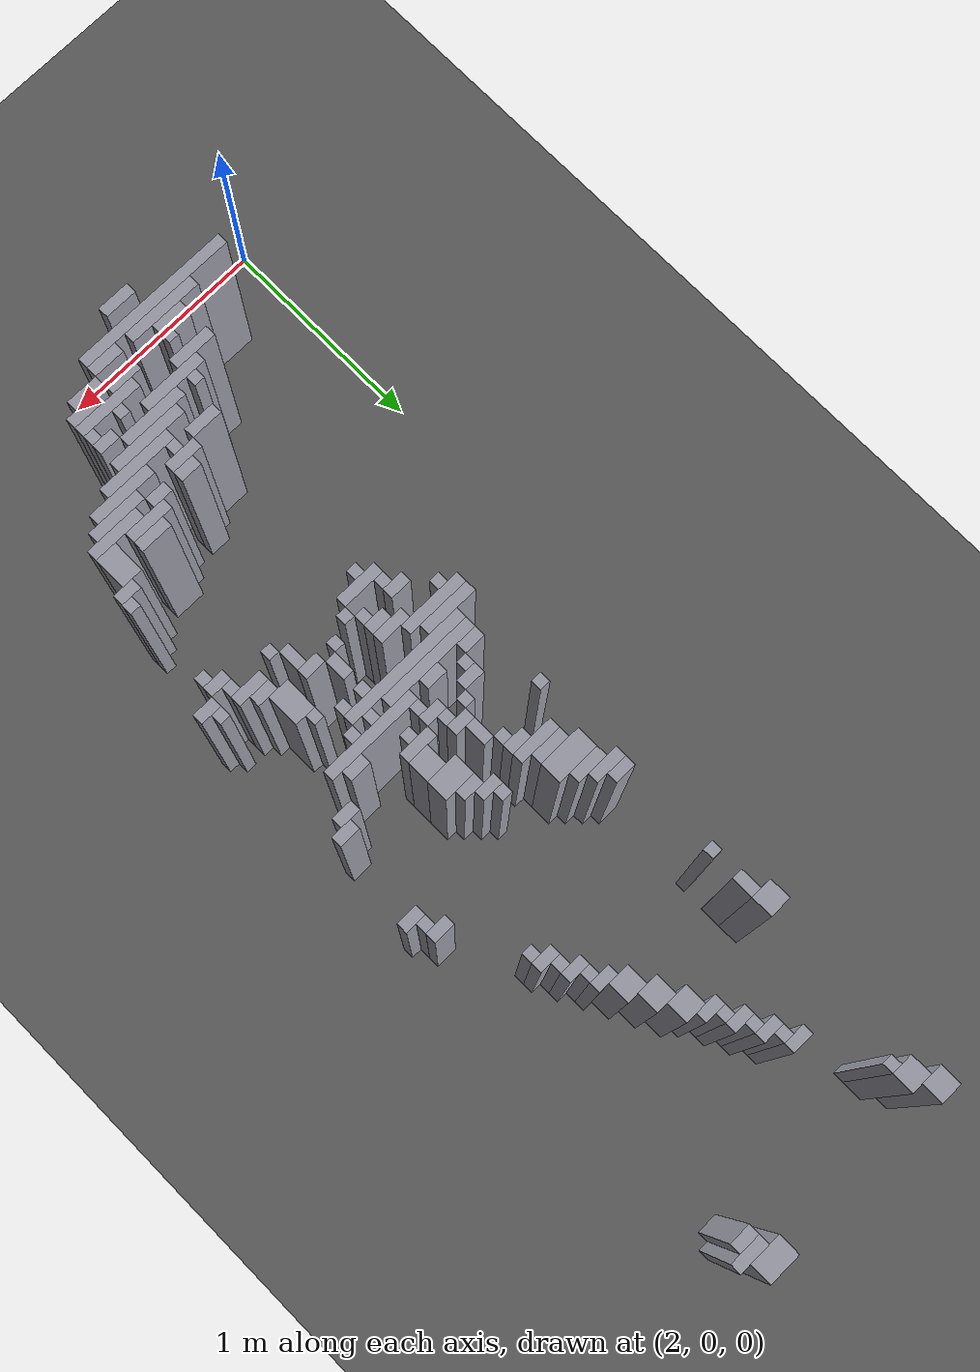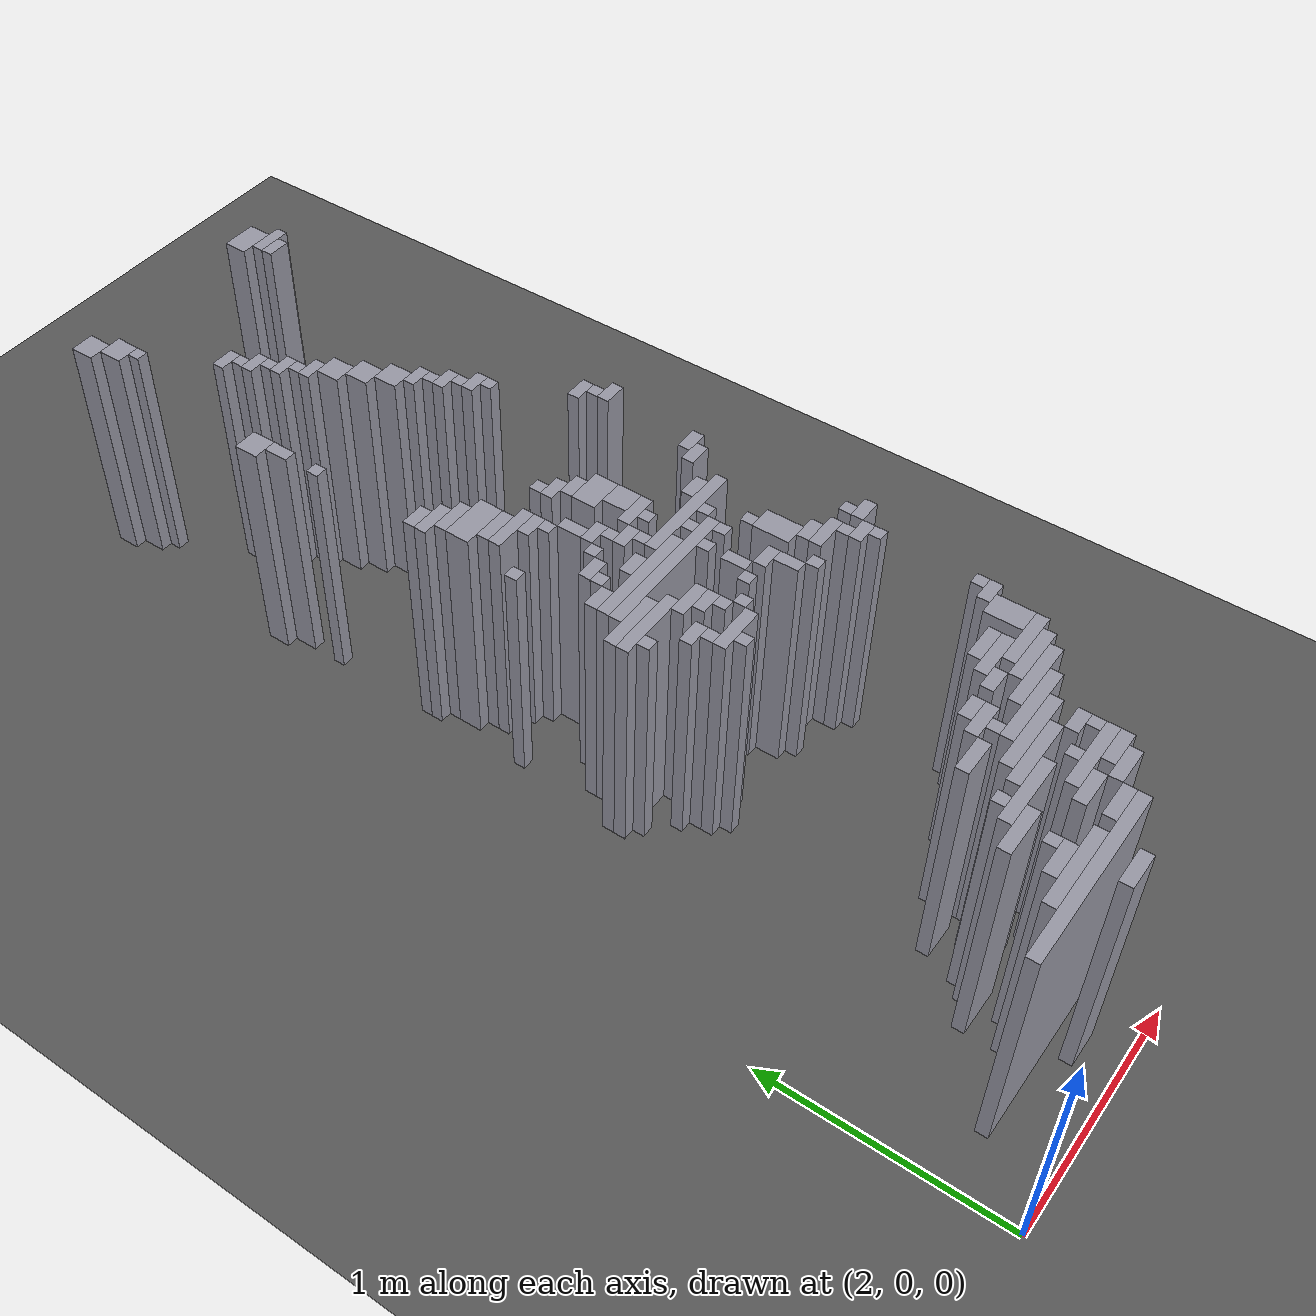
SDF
<sdf version="1.8">
 <world name="dimi">
  <model name="ground">
   <static>true</static>
   <link name="ground_link">
    <collision name="c"><geometry><plane><normal>0 0 1</normal><size>60 60</size></plane></geometry></collision>
    <visual name="v">
     <geometry><plane><normal>0 0 1</normal><size>60 60</size></plane></geometry>
     <material><ambient>0.3 0.3 0.3 1</ambient><diffuse>0.35 0.35 0.35 1</diffuse></material>
    </visual>
   </link>
  </model>
  <model name="walls">
   <static>true</static>
   <link name="wall_734">
    <pose>2.6330 4.4950 0.5000 0 0 0</pose>
    <collision name="c"><geometry><box><size>0.1000 0.1000 1.0000</size></box></geometry></collision>
    <visual name="v">
     <geometry><box><size>0.1000 0.1000 1.0000</size></box></geometry>
     <material><ambient>0.5 0.5 0.55 1</ambient><diffuse>0.6 0.6 0.65 1</diffuse></material>
    </visual>
   </link>
   <link name="wall_735">
    <pose>3.5080 4.4950 0.5000 0 0 0</pose>
    <collision name="c"><geometry><box><size>0.1500 0.1000 1.0000</size></box></geometry></collision>
    <visual name="v">
     <geometry><box><size>0.1500 0.1000 1.0000</size></box></geometry>
     <material><ambient>0.5 0.5 0.55 1</ambient><diffuse>0.6 0.6 0.65 1</diffuse></material>
    </visual>
   </link>
   <link name="wall_753">
    <pose>2.6830 4.3950 0.5000 0 0 0</pose>
    <collision name="c"><geometry><box><size>0.1000 0.1000 1.0000</size></box></geometry></collision>
    <visual name="v">
     <geometry><box><size>0.1000 0.1000 1.0000</size></box></geometry>
     <material><ambient>0.5 0.5 0.55 1</ambient><diffuse>0.6 0.6 0.65 1</diffuse></material>
    </visual>
   </link>
   <link name="wall_754">
    <pose>3.5580 4.4200 0.5000 0 0 0</pose>
    <collision name="c"><geometry><box><size>0.1500 0.0500 1.0000</size></box></geometry></collision>
    <visual name="v">
     <geometry><box><size>0.1500 0.0500 1.0000</size></box></geometry>
     <material><ambient>0.5 0.5 0.55 1</ambient><diffuse>0.6 0.6 0.65 1</diffuse></material>
    </visual>
   </link>
   <link name="wall_765">
    <pose>3.5330 4.3700 0.5000 0 0 0</pose>
    <collision name="c"><geometry><box><size>0.1000 0.0500 1.0000</size></box></geometry></collision>
    <visual name="v">
     <geometry><box><size>0.1000 0.0500 1.0000</size></box></geometry>
     <material><ambient>0.5 0.5 0.55 1</ambient><diffuse>0.6 0.6 0.65 1</diffuse></material>
    </visual>
   </link>
   <link name="wall_774">
    <pose>2.7080 4.3200 0.5000 0 0 0</pose>
    <collision name="c"><geometry><box><size>0.0500 0.0500 1.0000</size></box></geometry></collision>
    <visual name="v">
     <geometry><box><size>0.0500 0.0500 1.0000</size></box></geometry>
     <material><ambient>0.5 0.5 0.55 1</ambient><diffuse>0.6 0.6 0.65 1</diffuse></material>
    </visual>
   </link>
   <link name="wall_833">
    <pose>2.8830 4.0200 0.5000 0 0 0</pose>
    <collision name="c"><geometry><box><size>0.1000 0.0500 1.0000</size></box></geometry></collision>
    <visual name="v">
     <geometry><box><size>0.1000 0.0500 1.0000</size></box></geometry>
     <material><ambient>0.5 0.5 0.55 1</ambient><diffuse>0.6 0.6 0.65 1</diffuse></material>
    </visual>
   </link>
   <link name="wall_846">
    <pose>2.9080 3.9700 0.5000 0 0 0</pose>
    <collision name="c"><geometry><box><size>0.0500 0.0500 1.0000</size></box></geometry></collision>
    <visual name="v">
     <geometry><box><size>0.0500 0.0500 1.0000</size></box></geometry>
     <material><ambient>0.5 0.5 0.55 1</ambient><diffuse>0.6 0.6 0.65 1</diffuse></material>
    </visual>
   </link>
   <link name="wall_858">
    <pose>2.9330 3.9200 0.5000 0 0 0</pose>
    <collision name="c"><geometry><box><size>0.1000 0.0500 1.0000</size></box></geometry></collision>
    <visual name="v">
     <geometry><box><size>0.1000 0.0500 1.0000</size></box></geometry>
     <material><ambient>0.5 0.5 0.55 1</ambient><diffuse>0.6 0.6 0.65 1</diffuse></material>
    </visual>
   </link>
   <link name="wall_866">
    <pose>2.9580 3.8700 0.5000 0 0 0</pose>
    <collision name="c"><geometry><box><size>0.0500 0.0500 1.0000</size></box></geometry></collision>
    <visual name="v">
     <geometry><box><size>0.0500 0.0500 1.0000</size></box></geometry>
     <material><ambient>0.5 0.5 0.55 1</ambient><diffuse>0.6 0.6 0.65 1</diffuse></material>
    </visual>
   </link>
   <link name="wall_874">
    <pose>2.9830 3.8200 0.5000 0 0 0</pose>
    <collision name="c"><geometry><box><size>0.1000 0.0500 1.0000</size></box></geometry></collision>
    <visual name="v">
     <geometry><box><size>0.1000 0.0500 1.0000</size></box></geometry>
     <material><ambient>0.5 0.5 0.55 1</ambient><diffuse>0.6 0.6 0.65 1</diffuse></material>
    </visual>
   </link>
   <link name="wall_884">
    <pose>3.0080 3.7700 0.5000 0 0 0</pose>
    <collision name="c"><geometry><box><size>0.0500 0.0500 1.0000</size></box></geometry></collision>
    <visual name="v">
     <geometry><box><size>0.0500 0.0500 1.0000</size></box></geometry>
     <material><ambient>0.5 0.5 0.55 1</ambient><diffuse>0.6 0.6 0.65 1</diffuse></material>
    </visual>
   </link>
   <link name="wall_889">
    <pose>3.0330 3.7200 0.5000 0 0 0</pose>
    <collision name="c"><geometry><box><size>0.1000 0.0500 1.0000</size></box></geometry></collision>
    <visual name="v">
     <geometry><box><size>0.1000 0.0500 1.0000</size></box></geometry>
     <material><ambient>0.5 0.5 0.55 1</ambient><diffuse>0.6 0.6 0.65 1</diffuse></material>
    </visual>
   </link>
   <link name="wall_900">
    <pose>3.0830 3.6450 0.5000 0 0 0</pose>
    <collision name="c"><geometry><box><size>0.1000 0.1000 1.0000</size></box></geometry></collision>
    <visual name="v">
     <geometry><box><size>0.1000 0.1000 1.0000</size></box></geometry>
     <material><ambient>0.5 0.5 0.55 1</ambient><diffuse>0.6 0.6 0.65 1</diffuse></material>
    </visual>
   </link>
   <link name="wall_907">
    <pose>2.5830 3.5950 0.5000 0 0 0</pose>
    <collision name="c"><geometry><box><size>0.1000 0.1000 1.0000</size></box></geometry></collision>
    <visual name="v">
     <geometry><box><size>0.1000 0.1000 1.0000</size></box></geometry>
     <material><ambient>0.5 0.5 0.55 1</ambient><diffuse>0.6 0.6 0.65 1</diffuse></material>
    </visual>
   </link>
   <link name="wall_916">
    <pose>3.1330 3.5450 0.5000 0 0 0</pose>
    <collision name="c"><geometry><box><size>0.1000 0.1000 1.0000</size></box></geometry></collision>
    <visual name="v">
     <geometry><box><size>0.1000 0.1000 1.0000</size></box></geometry>
     <material><ambient>0.5 0.5 0.55 1</ambient><diffuse>0.6 0.6 0.65 1</diffuse></material>
    </visual>
   </link>
   <link name="wall_924">
    <pose>2.6080 3.4950 0.5000 0 0 0</pose>
    <collision name="c"><geometry><box><size>0.0500 0.1000 1.0000</size></box></geometry></collision>
    <visual name="v">
     <geometry><box><size>0.0500 0.1000 1.0000</size></box></geometry>
     <material><ambient>0.5 0.5 0.55 1</ambient><diffuse>0.6 0.6 0.65 1</diffuse></material>
    </visual>
   </link>
   <link name="wall_932">
    <pose>3.1830 3.4450 0.5000 0 0 0</pose>
    <collision name="c"><geometry><box><size>0.1000 0.1000 1.0000</size></box></geometry></collision>
    <visual name="v">
     <geometry><box><size>0.1000 0.1000 1.0000</size></box></geometry>
     <material><ambient>0.5 0.5 0.55 1</ambient><diffuse>0.6 0.6 0.65 1</diffuse></material>
    </visual>
   </link>
   <link name="wall_950">
    <pose>3.2330 3.3700 0.5000 0 0 0</pose>
    <collision name="c"><geometry><box><size>0.1000 0.0500 1.0000</size></box></geometry></collision>
    <visual name="v">
     <geometry><box><size>0.1000 0.0500 1.0000</size></box></geometry>
     <material><ambient>0.5 0.5 0.55 1</ambient><diffuse>0.6 0.6 0.65 1</diffuse></material>
    </visual>
   </link>
   <link name="wall_958">
    <pose>2.6080 3.3200 0.5000 0 0 0</pose>
    <collision name="c"><geometry><box><size>0.0500 0.0500 1.0000</size></box></geometry></collision>
    <visual name="v">
     <geometry><box><size>0.0500 0.0500 1.0000</size></box></geometry>
     <material><ambient>0.5 0.5 0.55 1</ambient><diffuse>0.6 0.6 0.65 1</diffuse></material>
    </visual>
   </link>
   <link name="wall_959">
    <pose>3.2580 3.3200 0.5000 0 0 0</pose>
    <collision name="c"><geometry><box><size>0.0500 0.0500 1.0000</size></box></geometry></collision>
    <visual name="v">
     <geometry><box><size>0.0500 0.0500 1.0000</size></box></geometry>
     <material><ambient>0.5 0.5 0.55 1</ambient><diffuse>0.6 0.6 0.65 1</diffuse></material>
    </visual>
   </link>
   <link name="wall_966">
    <pose>3.2830 3.2700 0.5000 0 0 0</pose>
    <collision name="c"><geometry><box><size>0.1000 0.0500 1.0000</size></box></geometry></collision>
    <visual name="v">
     <geometry><box><size>0.1000 0.0500 1.0000</size></box></geometry>
     <material><ambient>0.5 0.5 0.55 1</ambient><diffuse>0.6 0.6 0.65 1</diffuse></material>
    </visual>
   </link>
   <link name="wall_974">
    <pose>3.3080 3.2200 0.5000 0 0 0</pose>
    <collision name="c"><geometry><box><size>0.0500 0.0500 1.0000</size></box></geometry></collision>
    <visual name="v">
     <geometry><box><size>0.0500 0.0500 1.0000</size></box></geometry>
     <material><ambient>0.5 0.5 0.55 1</ambient><diffuse>0.6 0.6 0.65 1</diffuse></material>
    </visual>
   </link>
   <link name="wall_981">
    <pose>3.3330 3.1700 0.5000 0 0 0</pose>
    <collision name="c"><geometry><box><size>0.1000 0.0500 1.0000</size></box></geometry></collision>
    <visual name="v">
     <geometry><box><size>0.1000 0.0500 1.0000</size></box></geometry>
     <material><ambient>0.5 0.5 0.55 1</ambient><diffuse>0.6 0.6 0.65 1</diffuse></material>
    </visual>
   </link>
   <link name="wall_988">
    <pose>3.3580 3.1200 0.5000 0 0 0</pose>
    <collision name="c"><geometry><box><size>0.0500 0.0500 1.0000</size></box></geometry></collision>
    <visual name="v">
     <geometry><box><size>0.0500 0.0500 1.0000</size></box></geometry>
     <material><ambient>0.5 0.5 0.55 1</ambient><diffuse>0.6 0.6 0.65 1</diffuse></material>
    </visual>
   </link>
   <link name="wall_1008">
    <pose>2.6330 2.8700 0.5000 0 0 0</pose>
    <collision name="c"><geometry><box><size>0.1000 0.0500 1.0000</size></box></geometry></collision>
    <visual name="v">
     <geometry><box><size>0.1000 0.0500 1.0000</size></box></geometry>
     <material><ambient>0.5 0.5 0.55 1</ambient><diffuse>0.6 0.6 0.65 1</diffuse></material>
    </visual>
   </link>
   <link name="wall_1011">
    <pose>2.6580 2.8200 0.5000 0 0 0</pose>
    <collision name="c"><geometry><box><size>0.1500 0.0500 1.0000</size></box></geometry></collision>
    <visual name="v">
     <geometry><box><size>0.1500 0.0500 1.0000</size></box></geometry>
     <material><ambient>0.5 0.5 0.55 1</ambient><diffuse>0.6 0.6 0.65 1</diffuse></material>
    </visual>
   </link>
   <link name="wall_1012">
    <pose>3.5330 2.8200 0.5000 0 0 0</pose>
    <collision name="c"><geometry><box><size>0.1000 0.0500 1.0000</size></box></geometry></collision>
    <visual name="v">
     <geometry><box><size>0.1000 0.0500 1.0000</size></box></geometry>
     <material><ambient>0.5 0.5 0.55 1</ambient><diffuse>0.6 0.6 0.65 1</diffuse></material>
    </visual>
   </link>
   <link name="wall_1015">
    <pose>2.7080 2.7700 0.5000 0 0 0</pose>
    <collision name="c"><geometry><box><size>0.1500 0.0500 1.0000</size></box></geometry></collision>
    <visual name="v">
     <geometry><box><size>0.1500 0.0500 1.0000</size></box></geometry>
     <material><ambient>0.5 0.5 0.55 1</ambient><diffuse>0.6 0.6 0.65 1</diffuse></material>
    </visual>
   </link>
   <link name="wall_1016">
    <pose>3.5580 2.7700 0.5000 0 0 0</pose>
    <collision name="c"><geometry><box><size>0.0500 0.0500 1.0000</size></box></geometry></collision>
    <visual name="v">
     <geometry><box><size>0.0500 0.0500 1.0000</size></box></geometry>
     <material><ambient>0.5 0.5 0.55 1</ambient><diffuse>0.6 0.6 0.65 1</diffuse></material>
    </visual>
   </link>
   <link name="wall_1021">
    <pose>2.7330 2.6950 0.5000 0 0 0</pose>
    <collision name="c"><geometry><box><size>0.2000 0.1000 1.0000</size></box></geometry></collision>
    <visual name="v">
     <geometry><box><size>0.2000 0.1000 1.0000</size></box></geometry>
     <material><ambient>0.5 0.5 0.55 1</ambient><diffuse>0.6 0.6 0.65 1</diffuse></material>
    </visual>
   </link>
   <link name="wall_1022">
    <pose>3.5830 2.7200 0.5000 0 0 0</pose>
    <collision name="c"><geometry><box><size>0.1000 0.0500 1.0000</size></box></geometry></collision>
    <visual name="v">
     <geometry><box><size>0.1000 0.0500 1.0000</size></box></geometry>
     <material><ambient>0.5 0.5 0.55 1</ambient><diffuse>0.6 0.6 0.65 1</diffuse></material>
    </visual>
   </link>
   <link name="wall_1032">
    <pose>2.7580 2.6200 0.5000 0 0 0</pose>
    <collision name="c"><geometry><box><size>0.1500 0.0500 1.0000</size></box></geometry></collision>
    <visual name="v">
     <geometry><box><size>0.1500 0.0500 1.0000</size></box></geometry>
     <material><ambient>0.5 0.5 0.55 1</ambient><diffuse>0.6 0.6 0.65 1</diffuse></material>
    </visual>
   </link>
   <link name="wall_1033">
    <pose>3.0080 2.6200 0.5000 0 0 0</pose>
    <collision name="c"><geometry><box><size>0.0500 0.0500 1.0000</size></box></geometry></collision>
    <visual name="v">
     <geometry><box><size>0.0500 0.0500 1.0000</size></box></geometry>
     <material><ambient>0.5 0.5 0.55 1</ambient><diffuse>0.6 0.6 0.65 1</diffuse></material>
    </visual>
   </link>
   <link name="wall_1039">
    <pose>2.7830 2.5700 0.5000 0 0 0</pose>
    <collision name="c"><geometry><box><size>0.2000 0.0500 1.0000</size></box></geometry></collision>
    <visual name="v">
     <geometry><box><size>0.2000 0.0500 1.0000</size></box></geometry>
     <material><ambient>0.5 0.5 0.55 1</ambient><diffuse>0.6 0.6 0.65 1</diffuse></material>
    </visual>
   </link>
   <link name="wall_1040">
    <pose>3.0330 2.5700 0.5000 0 0 0</pose>
    <collision name="c"><geometry><box><size>0.1000 0.0500 1.0000</size></box></geometry></collision>
    <visual name="v">
     <geometry><box><size>0.1000 0.0500 1.0000</size></box></geometry>
     <material><ambient>0.5 0.5 0.55 1</ambient><diffuse>0.6 0.6 0.65 1</diffuse></material>
    </visual>
   </link>
   <link name="wall_1047">
    <pose>2.8330 2.5200 0.5000 0 0 0</pose>
    <collision name="c"><geometry><box><size>0.1000 0.0500 1.0000</size></box></geometry></collision>
    <visual name="v">
     <geometry><box><size>0.1000 0.0500 1.0000</size></box></geometry>
     <material><ambient>0.5 0.5 0.55 1</ambient><diffuse>0.6 0.6 0.65 1</diffuse></material>
    </visual>
   </link>
   <link name="wall_1048">
    <pose>3.0830 2.5200 0.5000 0 0 0</pose>
    <collision name="c"><geometry><box><size>0.1000 0.0500 1.0000</size></box></geometry></collision>
    <visual name="v">
     <geometry><box><size>0.1000 0.0500 1.0000</size></box></geometry>
     <material><ambient>0.5 0.5 0.55 1</ambient><diffuse>0.6 0.6 0.65 1</diffuse></material>
    </visual>
   </link>
   <link name="wall_1054">
    <pose>2.8580 2.4700 0.5000 0 0 0</pose>
    <collision name="c"><geometry><box><size>0.0500 0.0500 1.0000</size></box></geometry></collision>
    <visual name="v">
     <geometry><box><size>0.0500 0.0500 1.0000</size></box></geometry>
     <material><ambient>0.5 0.5 0.55 1</ambient><diffuse>0.6 0.6 0.65 1</diffuse></material>
    </visual>
   </link>
   <link name="wall_1055">
    <pose>3.1080 2.4450 0.5000 0 0 0</pose>
    <collision name="c"><geometry><box><size>0.1500 0.1000 1.0000</size></box></geometry></collision>
    <visual name="v">
     <geometry><box><size>0.1500 0.1000 1.0000</size></box></geometry>
     <material><ambient>0.5 0.5 0.55 1</ambient><diffuse>0.6 0.6 0.65 1</diffuse></material>
    </visual>
   </link>
   <link name="wall_1062">
    <pose>2.6080 2.4200 0.5000 0 0 0</pose>
    <collision name="c"><geometry><box><size>0.0500 0.0500 1.0000</size></box></geometry></collision>
    <visual name="v">
     <geometry><box><size>0.0500 0.0500 1.0000</size></box></geometry>
     <material><ambient>0.5 0.5 0.55 1</ambient><diffuse>0.6 0.6 0.65 1</diffuse></material>
    </visual>
   </link>
   <link name="wall_1063">
    <pose>2.9080 2.3950 0.5000 0 0 0</pose>
    <collision name="c"><geometry><box><size>0.0500 0.1000 1.0000</size></box></geometry></collision>
    <visual name="v">
     <geometry><box><size>0.0500 0.1000 1.0000</size></box></geometry>
     <material><ambient>0.5 0.5 0.55 1</ambient><diffuse>0.6 0.6 0.65 1</diffuse></material>
    </visual>
   </link>
   <link name="wall_1067">
    <pose>3.1330 2.3450 0.5000 0 0 0</pose>
    <collision name="c"><geometry><box><size>0.1000 0.1000 1.0000</size></box></geometry></collision>
    <visual name="v">
     <geometry><box><size>0.1000 0.1000 1.0000</size></box></geometry>
     <material><ambient>0.5 0.5 0.55 1</ambient><diffuse>0.6 0.6 0.65 1</diffuse></material>
    </visual>
   </link>
   <link name="wall_1071">
    <pose>2.9330 2.3200 0.5000 0 0 0</pose>
    <collision name="c"><geometry><box><size>0.1000 0.0500 1.0000</size></box></geometry></collision>
    <visual name="v">
     <geometry><box><size>0.1000 0.0500 1.0000</size></box></geometry>
     <material><ambient>0.5 0.5 0.55 1</ambient><diffuse>0.6 0.6 0.65 1</diffuse></material>
    </visual>
   </link>
   <link name="wall_1072">
    <pose>3.5330 2.3200 0.5000 0 0 0</pose>
    <collision name="c"><geometry><box><size>0.1000 0.0500 1.0000</size></box></geometry></collision>
    <visual name="v">
     <geometry><box><size>0.1000 0.0500 1.0000</size></box></geometry>
     <material><ambient>0.5 0.5 0.55 1</ambient><diffuse>0.6 0.6 0.65 1</diffuse></material>
    </visual>
   </link>
   <link name="wall_1075">
    <pose>2.8580 2.2700 0.5000 0 0 0</pose>
    <collision name="c"><geometry><box><size>0.0500 0.0500 1.0000</size></box></geometry></collision>
    <visual name="v">
     <geometry><box><size>0.0500 0.0500 1.0000</size></box></geometry>
     <material><ambient>0.5 0.5 0.55 1</ambient><diffuse>0.6 0.6 0.65 1</diffuse></material>
    </visual>
   </link>
   <link name="wall_1076">
    <pose>2.9580 2.2700 0.5000 0 0 0</pose>
    <collision name="c"><geometry><box><size>0.0500 0.0500 1.0000</size></box></geometry></collision>
    <visual name="v">
     <geometry><box><size>0.0500 0.0500 1.0000</size></box></geometry>
     <material><ambient>0.5 0.5 0.55 1</ambient><diffuse>0.6 0.6 0.65 1</diffuse></material>
    </visual>
   </link>
   <link name="wall_1077">
    <pose>3.1080 2.2700 0.5000 0 0 0</pose>
    <collision name="c"><geometry><box><size>0.1500 0.0500 1.0000</size></box></geometry></collision>
    <visual name="v">
     <geometry><box><size>0.1500 0.0500 1.0000</size></box></geometry>
     <material><ambient>0.5 0.5 0.55 1</ambient><diffuse>0.6 0.6 0.65 1</diffuse></material>
    </visual>
   </link>
   <link name="wall_1078">
    <pose>3.4830 2.2700 0.5000 0 0 0</pose>
    <collision name="c"><geometry><box><size>0.1000 0.0500 1.0000</size></box></geometry></collision>
    <visual name="v">
     <geometry><box><size>0.1000 0.0500 1.0000</size></box></geometry>
     <material><ambient>0.5 0.5 0.55 1</ambient><diffuse>0.6 0.6 0.65 1</diffuse></material>
    </visual>
   </link>
   <link name="wall_1081">
    <pose>2.7830 2.2200 0.5000 0 0 0</pose>
    <collision name="c"><geometry><box><size>0.1000 0.0500 1.0000</size></box></geometry></collision>
    <visual name="v">
     <geometry><box><size>0.1000 0.0500 1.0000</size></box></geometry>
     <material><ambient>0.5 0.5 0.55 1</ambient><diffuse>0.6 0.6 0.65 1</diffuse></material>
    </visual>
   </link>
   <link name="wall_1082">
    <pose>2.9830 2.2200 0.5000 0 0 0</pose>
    <collision name="c"><geometry><box><size>0.1000 0.0500 1.0000</size></box></geometry></collision>
    <visual name="v">
     <geometry><box><size>0.1000 0.0500 1.0000</size></box></geometry>
     <material><ambient>0.5 0.5 0.55 1</ambient><diffuse>0.6 0.6 0.65 1</diffuse></material>
    </visual>
   </link>
   <link name="wall_1083">
    <pose>3.1080 2.2200 0.5000 0 0 0</pose>
    <collision name="c"><geometry><box><size>0.0500 0.0500 1.0000</size></box></geometry></collision>
    <visual name="v">
     <geometry><box><size>0.0500 0.0500 1.0000</size></box></geometry>
     <material><ambient>0.5 0.5 0.55 1</ambient><diffuse>0.6 0.6 0.65 1</diffuse></material>
    </visual>
   </link>
   <link name="wall_1088">
    <pose>2.7580 2.1700 0.5000 0 0 0</pose>
    <collision name="c"><geometry><box><size>0.0500 0.0500 1.0000</size></box></geometry></collision>
    <visual name="v">
     <geometry><box><size>0.0500 0.0500 1.0000</size></box></geometry>
     <material><ambient>0.5 0.5 0.55 1</ambient><diffuse>0.6 0.6 0.65 1</diffuse></material>
    </visual>
   </link>
   <link name="wall_1089">
    <pose>3.0080 2.1700 0.5000 0 0 0</pose>
    <collision name="c"><geometry><box><size>0.0500 0.0500 1.0000</size></box></geometry></collision>
    <visual name="v">
     <geometry><box><size>0.0500 0.0500 1.0000</size></box></geometry>
     <material><ambient>0.5 0.5 0.55 1</ambient><diffuse>0.6 0.6 0.65 1</diffuse></material>
    </visual>
   </link>
   <link name="wall_1090">
    <pose>3.3330 2.1700 0.5000 0 0 0</pose>
    <collision name="c"><geometry><box><size>0.1000 0.0500 1.0000</size></box></geometry></collision>
    <visual name="v">
     <geometry><box><size>0.1000 0.0500 1.0000</size></box></geometry>
     <material><ambient>0.5 0.5 0.55 1</ambient><diffuse>0.6 0.6 0.65 1</diffuse></material>
    </visual>
   </link>
   <link name="wall_1094">
    <pose>2.6830 2.1200 0.5000 0 0 0</pose>
    <collision name="c"><geometry><box><size>0.1000 0.0500 1.0000</size></box></geometry></collision>
    <visual name="v">
     <geometry><box><size>0.1000 0.0500 1.0000</size></box></geometry>
     <material><ambient>0.5 0.5 0.55 1</ambient><diffuse>0.6 0.6 0.65 1</diffuse></material>
    </visual>
   </link>
   <link name="wall_1095">
    <pose>2.8830 2.1200 0.5000 0 0 0</pose>
    <collision name="c"><geometry><box><size>0.1000 0.0500 1.0000</size></box></geometry></collision>
    <visual name="v">
     <geometry><box><size>0.1000 0.0500 1.0000</size></box></geometry>
     <material><ambient>0.5 0.5 0.55 1</ambient><diffuse>0.6 0.6 0.65 1</diffuse></material>
    </visual>
   </link>
   <link name="wall_1096">
    <pose>3.2080 2.1200 0.5000 0 0 0</pose>
    <collision name="c"><geometry><box><size>0.4500 0.0500 1.0000</size></box></geometry></collision>
    <visual name="v">
     <geometry><box><size>0.4500 0.0500 1.0000</size></box></geometry>
     <material><ambient>0.5 0.5 0.55 1</ambient><diffuse>0.6 0.6 0.65 1</diffuse></material>
    </visual>
   </link>
   <link name="wall_1099">
    <pose>2.8580 2.0700 0.5000 0 0 0</pose>
    <collision name="c"><geometry><box><size>0.4500 0.0500 1.0000</size></box></geometry></collision>
    <visual name="v">
     <geometry><box><size>0.4500 0.0500 1.0000</size></box></geometry>
     <material><ambient>0.5 0.5 0.55 1</ambient><diffuse>0.6 0.6 0.65 1</diffuse></material>
    </visual>
   </link>
   <link name="wall_1100">
    <pose>3.1580 2.0700 0.5000 0 0 0</pose>
    <collision name="c"><geometry><box><size>0.0500 0.0500 1.0000</size></box></geometry></collision>
    <visual name="v">
     <geometry><box><size>0.0500 0.0500 1.0000</size></box></geometry>
     <material><ambient>0.5 0.5 0.55 1</ambient><diffuse>0.6 0.6 0.65 1</diffuse></material>
    </visual>
   </link>
   <link name="wall_1101">
    <pose>3.2580 2.0700 0.5000 0 0 0</pose>
    <collision name="c"><geometry><box><size>0.0500 0.0500 1.0000</size></box></geometry></collision>
    <visual name="v">
     <geometry><box><size>0.0500 0.0500 1.0000</size></box></geometry>
     <material><ambient>0.5 0.5 0.55 1</ambient><diffuse>0.6 0.6 0.65 1</diffuse></material>
    </visual>
   </link>
   <link name="wall_1103">
    <pose>2.9330 2.0200 0.5000 0 0 0</pose>
    <collision name="c"><geometry><box><size>0.6000 0.0500 1.0000</size></box></geometry></collision>
    <visual name="v">
     <geometry><box><size>0.6000 0.0500 1.0000</size></box></geometry>
     <material><ambient>0.5 0.5 0.55 1</ambient><diffuse>0.6 0.6 0.65 1</diffuse></material>
    </visual>
   </link>
   <link name="wall_1106">
    <pose>2.6580 1.9700 0.5000 0 0 0</pose>
    <collision name="c"><geometry><box><size>0.2500 0.0500 1.0000</size></box></geometry></collision>
    <visual name="v">
     <geometry><box><size>0.2500 0.0500 1.0000</size></box></geometry>
     <material><ambient>0.5 0.5 0.55 1</ambient><diffuse>0.6 0.6 0.65 1</diffuse></material>
    </visual>
   </link>
   <link name="wall_1107">
    <pose>3.1080 1.9700 0.5000 0 0 0</pose>
    <collision name="c"><geometry><box><size>0.0500 0.0500 1.0000</size></box></geometry></collision>
    <visual name="v">
     <geometry><box><size>0.0500 0.0500 1.0000</size></box></geometry>
     <material><ambient>0.5 0.5 0.55 1</ambient><diffuse>0.6 0.6 0.65 1</diffuse></material>
    </visual>
   </link>
   <link name="wall_1108">
    <pose>3.2080 1.9700 0.5000 0 0 0</pose>
    <collision name="c"><geometry><box><size>0.0500 0.0500 1.0000</size></box></geometry></collision>
    <visual name="v">
     <geometry><box><size>0.0500 0.0500 1.0000</size></box></geometry>
     <material><ambient>0.5 0.5 0.55 1</ambient><diffuse>0.6 0.6 0.65 1</diffuse></material>
    </visual>
   </link>
   <link name="wall_1111">
    <pose>2.6830 1.9200 0.5000 0 0 0</pose>
    <collision name="c"><geometry><box><size>0.3000 0.0500 1.0000</size></box></geometry></collision>
    <visual name="v">
     <geometry><box><size>0.3000 0.0500 1.0000</size></box></geometry>
     <material><ambient>0.5 0.5 0.55 1</ambient><diffuse>0.6 0.6 0.65 1</diffuse></material>
    </visual>
   </link>
   <link name="wall_1112">
    <pose>3.3080 1.9200 0.5000 0 0 0</pose>
    <collision name="c"><geometry><box><size>0.0500 0.0500 1.0000</size></box></geometry></collision>
    <visual name="v">
     <geometry><box><size>0.0500 0.0500 1.0000</size></box></geometry>
     <material><ambient>0.5 0.5 0.55 1</ambient><diffuse>0.6 0.6 0.65 1</diffuse></material>
    </visual>
   </link>
   <link name="wall_1115">
    <pose>2.6080 1.8700 0.5000 0 0 0</pose>
    <collision name="c"><geometry><box><size>0.0500 0.0500 1.0000</size></box></geometry></collision>
    <visual name="v">
     <geometry><box><size>0.0500 0.0500 1.0000</size></box></geometry>
     <material><ambient>0.5 0.5 0.55 1</ambient><diffuse>0.6 0.6 0.65 1</diffuse></material>
    </visual>
   </link>
   <link name="wall_1116">
    <pose>2.8580 1.8700 0.5000 0 0 0</pose>
    <collision name="c"><geometry><box><size>0.1500 0.0500 1.0000</size></box></geometry></collision>
    <visual name="v">
     <geometry><box><size>0.1500 0.0500 1.0000</size></box></geometry>
     <material><ambient>0.5 0.5 0.55 1</ambient><diffuse>0.6 0.6 0.65 1</diffuse></material>
    </visual>
   </link>
   <link name="wall_1117">
    <pose>3.1080 1.8450 0.5000 0 0 0</pose>
    <collision name="c"><geometry><box><size>0.0500 0.1000 1.0000</size></box></geometry></collision>
    <visual name="v">
     <geometry><box><size>0.0500 0.1000 1.0000</size></box></geometry>
     <material><ambient>0.5 0.5 0.55 1</ambient><diffuse>0.6 0.6 0.65 1</diffuse></material>
    </visual>
   </link>
   <link name="wall_1118">
    <pose>3.3330 1.8200 0.5000 0 0 0</pose>
    <collision name="c"><geometry><box><size>0.1000 0.1500 1.0000</size></box></geometry></collision>
    <visual name="v">
     <geometry><box><size>0.1000 0.1500 1.0000</size></box></geometry>
     <material><ambient>0.5 0.5 0.55 1</ambient><diffuse>0.6 0.6 0.65 1</diffuse></material>
    </visual>
   </link>
   <link name="wall_1122">
    <pose>2.8830 1.8200 0.5000 0 0 0</pose>
    <collision name="c"><geometry><box><size>0.1000 0.0500 1.0000</size></box></geometry></collision>
    <visual name="v">
     <geometry><box><size>0.1000 0.0500 1.0000</size></box></geometry>
     <material><ambient>0.5 0.5 0.55 1</ambient><diffuse>0.6 0.6 0.65 1</diffuse></material>
    </visual>
   </link>
   <link name="wall_1123">
    <pose>2.7330 1.7700 0.5000 0 0 0</pose>
    <collision name="c"><geometry><box><size>0.1000 0.0500 1.0000</size></box></geometry></collision>
    <visual name="v">
     <geometry><box><size>0.1000 0.0500 1.0000</size></box></geometry>
     <material><ambient>0.5 0.5 0.55 1</ambient><diffuse>0.6 0.6 0.65 1</diffuse></material>
    </visual>
   </link>
   <link name="wall_1124">
    <pose>2.9080 1.7700 0.5000 0 0 0</pose>
    <collision name="c"><geometry><box><size>0.0500 0.0500 1.0000</size></box></geometry></collision>
    <visual name="v">
     <geometry><box><size>0.0500 0.0500 1.0000</size></box></geometry>
     <material><ambient>0.5 0.5 0.55 1</ambient><diffuse>0.6 0.6 0.65 1</diffuse></material>
    </visual>
   </link>
   <link name="wall_1125">
    <pose>3.0580 1.7700 0.5000 0 0 0</pose>
    <collision name="c"><geometry><box><size>0.0500 0.0500 1.0000</size></box></geometry></collision>
    <visual name="v">
     <geometry><box><size>0.0500 0.0500 1.0000</size></box></geometry>
     <material><ambient>0.5 0.5 0.55 1</ambient><diffuse>0.6 0.6 0.65 1</diffuse></material>
    </visual>
   </link>
   <link name="wall_1126">
    <pose>3.1830 1.7700 0.5000 0 0 0</pose>
    <collision name="c"><geometry><box><size>0.1000 0.0500 1.0000</size></box></geometry></collision>
    <visual name="v">
     <geometry><box><size>0.1000 0.0500 1.0000</size></box></geometry>
     <material><ambient>0.5 0.5 0.55 1</ambient><diffuse>0.6 0.6 0.65 1</diffuse></material>
    </visual>
   </link>
   <link name="wall_1129">
    <pose>2.7580 1.7200 0.5000 0 0 0</pose>
    <collision name="c"><geometry><box><size>0.0500 0.0500 1.0000</size></box></geometry></collision>
    <visual name="v">
     <geometry><box><size>0.0500 0.0500 1.0000</size></box></geometry>
     <material><ambient>0.5 0.5 0.55 1</ambient><diffuse>0.6 0.6 0.65 1</diffuse></material>
    </visual>
   </link>
   <link name="wall_1130">
    <pose>2.9580 1.7200 0.5000 0 0 0</pose>
    <collision name="c"><geometry><box><size>0.0500 0.0500 1.0000</size></box></geometry></collision>
    <visual name="v">
     <geometry><box><size>0.0500 0.0500 1.0000</size></box></geometry>
     <material><ambient>0.5 0.5 0.55 1</ambient><diffuse>0.6 0.6 0.65 1</diffuse></material>
    </visual>
   </link>
   <link name="wall_1131">
    <pose>3.2080 1.6950 0.5000 0 0 0</pose>
    <collision name="c"><geometry><box><size>0.0500 0.1000 1.0000</size></box></geometry></collision>
    <visual name="v">
     <geometry><box><size>0.0500 0.1000 1.0000</size></box></geometry>
     <material><ambient>0.5 0.5 0.55 1</ambient><diffuse>0.6 0.6 0.65 1</diffuse></material>
    </visual>
   </link>
   <link name="wall_1132">
    <pose>3.3830 1.7200 0.5000 0 0 0</pose>
    <collision name="c"><geometry><box><size>0.1000 0.0500 1.0000</size></box></geometry></collision>
    <visual name="v">
     <geometry><box><size>0.1000 0.0500 1.0000</size></box></geometry>
     <material><ambient>0.5 0.5 0.55 1</ambient><diffuse>0.6 0.6 0.65 1</diffuse></material>
    </visual>
   </link>
   <link name="wall_1135">
    <pose>2.8330 1.6700 0.5000 0 0 0</pose>
    <collision name="c"><geometry><box><size>0.2000 0.0500 1.0000</size></box></geometry></collision>
    <visual name="v">
     <geometry><box><size>0.2000 0.0500 1.0000</size></box></geometry>
     <material><ambient>0.5 0.5 0.55 1</ambient><diffuse>0.6 0.6 0.65 1</diffuse></material>
    </visual>
   </link>
   <link name="wall_1136">
    <pose>3.4080 1.6700 0.5000 0 0 0</pose>
    <collision name="c"><geometry><box><size>0.1500 0.0500 1.0000</size></box></geometry></collision>
    <visual name="v">
     <geometry><box><size>0.1500 0.0500 1.0000</size></box></geometry>
     <material><ambient>0.5 0.5 0.55 1</ambient><diffuse>0.6 0.6 0.65 1</diffuse></material>
    </visual>
   </link>
   <link name="wall_1137">
    <pose>3.5580 1.6700 0.5000 0 0 0</pose>
    <collision name="c"><geometry><box><size>0.0500 0.0500 1.0000</size></box></geometry></collision>
    <visual name="v">
     <geometry><box><size>0.0500 0.0500 1.0000</size></box></geometry>
     <material><ambient>0.5 0.5 0.55 1</ambient><diffuse>0.6 0.6 0.65 1</diffuse></material>
    </visual>
   </link>
   <link name="wall_1139">
    <pose>2.8080 1.6200 0.5000 0 0 0</pose>
    <collision name="c"><geometry><box><size>0.0500 0.0500 1.0000</size></box></geometry></collision>
    <visual name="v">
     <geometry><box><size>0.0500 0.0500 1.0000</size></box></geometry>
     <material><ambient>0.5 0.5 0.55 1</ambient><diffuse>0.6 0.6 0.65 1</diffuse></material>
    </visual>
   </link>
   <link name="wall_1140">
    <pose>3.2580 1.6200 0.5000 0 0 0</pose>
    <collision name="c"><geometry><box><size>0.0500 0.0500 1.0000</size></box></geometry></collision>
    <visual name="v">
     <geometry><box><size>0.0500 0.0500 1.0000</size></box></geometry>
     <material><ambient>0.5 0.5 0.55 1</ambient><diffuse>0.6 0.6 0.65 1</diffuse></material>
    </visual>
   </link>
   <link name="wall_1141">
    <pose>3.4580 1.6200 0.5000 0 0 0</pose>
    <collision name="c"><geometry><box><size>0.0500 0.0500 1.0000</size></box></geometry></collision>
    <visual name="v">
     <geometry><box><size>0.0500 0.0500 1.0000</size></box></geometry>
     <material><ambient>0.5 0.5 0.55 1</ambient><diffuse>0.6 0.6 0.65 1</diffuse></material>
    </visual>
   </link>
   <link name="wall_1142">
    <pose>3.5830 1.6200 0.5000 0 0 0</pose>
    <collision name="c"><geometry><box><size>0.1000 0.0500 1.0000</size></box></geometry></collision>
    <visual name="v">
     <geometry><box><size>0.1000 0.0500 1.0000</size></box></geometry>
     <material><ambient>0.5 0.5 0.55 1</ambient><diffuse>0.6 0.6 0.65 1</diffuse></material>
    </visual>
   </link>
   <link name="wall_1144">
    <pose>3.4830 1.5700 0.5000 0 0 0</pose>
    <collision name="c"><geometry><box><size>0.1000 0.0500 1.0000</size></box></geometry></collision>
    <visual name="v">
     <geometry><box><size>0.1000 0.0500 1.0000</size></box></geometry>
     <material><ambient>0.5 0.5 0.55 1</ambient><diffuse>0.6 0.6 0.65 1</diffuse></material>
    </visual>
   </link>
   <link name="wall_1147">
    <pose>3.5080 1.5200 0.5000 0 0 0</pose>
    <collision name="c"><geometry><box><size>0.0500 0.0500 1.0000</size></box></geometry></collision>
    <visual name="v">
     <geometry><box><size>0.0500 0.0500 1.0000</size></box></geometry>
     <material><ambient>0.5 0.5 0.55 1</ambient><diffuse>0.6 0.6 0.65 1</diffuse></material>
    </visual>
   </link>
   <link name="wall_1177">
    <pose>3.5080 1.1200 0.5000 0 0 0</pose>
    <collision name="c"><geometry><box><size>0.0500 0.0500 1.0000</size></box></geometry></collision>
    <visual name="v">
     <geometry><box><size>0.0500 0.0500 1.0000</size></box></geometry>
     <material><ambient>0.5 0.5 0.55 1</ambient><diffuse>0.6 0.6 0.65 1</diffuse></material>
    </visual>
   </link>
   <link name="wall_1182">
    <pose>3.4830 1.0700 0.5000 0 0 0</pose>
    <collision name="c"><geometry><box><size>0.1000 0.0500 1.0000</size></box></geometry></collision>
    <visual name="v">
     <geometry><box><size>0.1000 0.0500 1.0000</size></box></geometry>
     <material><ambient>0.5 0.5 0.55 1</ambient><diffuse>0.6 0.6 0.65 1</diffuse></material>
    </visual>
   </link>
   <link name="wall_1186">
    <pose>3.4330 0.9700 0.5000 0 0 0</pose>
    <collision name="c"><geometry><box><size>0.1000 0.1500 1.0000</size></box></geometry></collision>
    <visual name="v">
     <geometry><box><size>0.1000 0.1500 1.0000</size></box></geometry>
     <material><ambient>0.5 0.5 0.55 1</ambient><diffuse>0.6 0.6 0.65 1</diffuse></material>
    </visual>
   </link>
   <link name="wall_1190">
    <pose>3.2580 0.9700 0.5000 0 0 0</pose>
    <collision name="c"><geometry><box><size>0.1500 0.0500 1.0000</size></box></geometry></collision>
    <visual name="v">
     <geometry><box><size>0.1500 0.0500 1.0000</size></box></geometry>
     <material><ambient>0.5 0.5 0.55 1</ambient><diffuse>0.6 0.6 0.65 1</diffuse></material>
    </visual>
   </link>
   <link name="wall_1195">
    <pose>3.2330 0.9200 0.5000 0 0 0</pose>
    <collision name="c"><geometry><box><size>0.2000 0.0500 1.0000</size></box></geometry></collision>
    <visual name="v">
     <geometry><box><size>0.2000 0.0500 1.0000</size></box></geometry>
     <material><ambient>0.5 0.5 0.55 1</ambient><diffuse>0.6 0.6 0.65 1</diffuse></material>
    </visual>
   </link>
   <link name="wall_1200">
    <pose>2.9830 0.8700 0.5000 0 0 0</pose>
    <collision name="c"><geometry><box><size>0.1000 0.0500 1.0000</size></box></geometry></collision>
    <visual name="v">
     <geometry><box><size>0.1000 0.0500 1.0000</size></box></geometry>
     <material><ambient>0.5 0.5 0.55 1</ambient><diffuse>0.6 0.6 0.65 1</diffuse></material>
    </visual>
   </link>
   <link name="wall_1201">
    <pose>3.1330 0.8700 0.5000 0 0 0</pose>
    <collision name="c"><geometry><box><size>0.1000 0.0500 1.0000</size></box></geometry></collision>
    <visual name="v">
     <geometry><box><size>0.1000 0.0500 1.0000</size></box></geometry>
     <material><ambient>0.5 0.5 0.55 1</ambient><diffuse>0.6 0.6 0.65 1</diffuse></material>
    </visual>
   </link>
   <link name="wall_1202">
    <pose>3.3580 0.8700 0.5000 0 0 0</pose>
    <collision name="c"><geometry><box><size>0.2500 0.0500 1.0000</size></box></geometry></collision>
    <visual name="v">
     <geometry><box><size>0.2500 0.0500 1.0000</size></box></geometry>
     <material><ambient>0.5 0.5 0.55 1</ambient><diffuse>0.6 0.6 0.65 1</diffuse></material>
    </visual>
   </link>
   <link name="wall_1204">
    <pose>2.9580 0.8200 0.5000 0 0 0</pose>
    <collision name="c"><geometry><box><size>0.1500 0.0500 1.0000</size></box></geometry></collision>
    <visual name="v">
     <geometry><box><size>0.1500 0.0500 1.0000</size></box></geometry>
     <material><ambient>0.5 0.5 0.55 1</ambient><diffuse>0.6 0.6 0.65 1</diffuse></material>
    </visual>
   </link>
   <link name="wall_1205">
    <pose>3.3080 0.8200 0.5000 0 0 0</pose>
    <collision name="c"><geometry><box><size>0.2500 0.0500 1.0000</size></box></geometry></collision>
    <visual name="v">
     <geometry><box><size>0.2500 0.0500 1.0000</size></box></geometry>
     <material><ambient>0.5 0.5 0.55 1</ambient><diffuse>0.6 0.6 0.65 1</diffuse></material>
    </visual>
   </link>
   <link name="wall_1210">
    <pose>2.8080 0.7700 0.5000 0 0 0</pose>
    <collision name="c"><geometry><box><size>0.1500 0.0500 1.0000</size></box></geometry></collision>
    <visual name="v">
     <geometry><box><size>0.1500 0.0500 1.0000</size></box></geometry>
     <material><ambient>0.5 0.5 0.55 1</ambient><diffuse>0.6 0.6 0.65 1</diffuse></material>
    </visual>
   </link>
   <link name="wall_1211">
    <pose>2.9580 0.7700 0.5000 0 0 0</pose>
    <collision name="c"><geometry><box><size>0.0500 0.0500 1.0000</size></box></geometry></collision>
    <visual name="v">
     <geometry><box><size>0.0500 0.0500 1.0000</size></box></geometry>
     <material><ambient>0.5 0.5 0.55 1</ambient><diffuse>0.6 0.6 0.65 1</diffuse></material>
    </visual>
   </link>
   <link name="wall_1212">
    <pose>3.2330 0.7700 0.5000 0 0 0</pose>
    <collision name="c"><geometry><box><size>0.3000 0.0500 1.0000</size></box></geometry></collision>
    <visual name="v">
     <geometry><box><size>0.3000 0.0500 1.0000</size></box></geometry>
     <material><ambient>0.5 0.5 0.55 1</ambient><diffuse>0.6 0.6 0.65 1</diffuse></material>
    </visual>
   </link>
   <link name="wall_1215">
    <pose>3.1080 0.7200 0.5000 0 0 0</pose>
    <collision name="c"><geometry><box><size>0.3500 0.0500 1.0000</size></box></geometry></collision>
    <visual name="v">
     <geometry><box><size>0.3500 0.0500 1.0000</size></box></geometry>
     <material><ambient>0.5 0.5 0.55 1</ambient><diffuse>0.6 0.6 0.65 1</diffuse></material>
    </visual>
   </link>
   <link name="wall_1216">
    <pose>3.0080 0.6700 0.5000 0 0 0</pose>
    <collision name="c"><geometry><box><size>0.3500 0.0500 1.0000</size></box></geometry></collision>
    <visual name="v">
     <geometry><box><size>0.3500 0.0500 1.0000</size></box></geometry>
     <material><ambient>0.5 0.5 0.55 1</ambient><diffuse>0.6 0.6 0.65 1</diffuse></material>
    </visual>
   </link>
   <link name="wall_1219">
    <pose>2.7080 0.6200 0.5000 0 0 0</pose>
    <collision name="c"><geometry><box><size>0.0500 0.0500 1.0000</size></box></geometry></collision>
    <visual name="v">
     <geometry><box><size>0.0500 0.0500 1.0000</size></box></geometry>
     <material><ambient>0.5 0.5 0.55 1</ambient><diffuse>0.6 0.6 0.65 1</diffuse></material>
    </visual>
   </link>
   <link name="wall_1220">
    <pose>2.9330 0.6200 0.5000 0 0 0</pose>
    <collision name="c"><geometry><box><size>0.3000 0.0500 1.0000</size></box></geometry></collision>
    <visual name="v">
     <geometry><box><size>0.3000 0.0500 1.0000</size></box></geometry>
     <material><ambient>0.5 0.5 0.55 1</ambient><diffuse>0.6 0.6 0.65 1</diffuse></material>
    </visual>
   </link>
   <link name="wall_1223">
    <pose>2.7830 0.5700 0.5000 0 0 0</pose>
    <collision name="c"><geometry><box><size>0.3000 0.0500 1.0000</size></box></geometry></collision>
    <visual name="v">
     <geometry><box><size>0.3000 0.0500 1.0000</size></box></geometry>
     <material><ambient>0.5 0.5 0.55 1</ambient><diffuse>0.6 0.6 0.65 1</diffuse></material>
    </visual>
   </link>
   <link name="wall_1224">
    <pose>3.1330 0.5700 0.5000 0 0 0</pose>
    <collision name="c"><geometry><box><size>0.1000 0.0500 1.0000</size></box></geometry></collision>
    <visual name="v">
     <geometry><box><size>0.1000 0.0500 1.0000</size></box></geometry>
     <material><ambient>0.5 0.5 0.55 1</ambient><diffuse>0.6 0.6 0.65 1</diffuse></material>
    </visual>
   </link>
   <link name="wall_1228">
    <pose>2.6330 0.5200 0.5000 0 0 0</pose>
    <collision name="c"><geometry><box><size>0.2000 0.0500 1.0000</size></box></geometry></collision>
    <visual name="v">
     <geometry><box><size>0.2000 0.0500 1.0000</size></box></geometry>
     <material><ambient>0.5 0.5 0.55 1</ambient><diffuse>0.6 0.6 0.65 1</diffuse></material>
    </visual>
   </link>
   <link name="wall_1229">
    <pose>3.0080 0.5200 0.5000 0 0 0</pose>
    <collision name="c"><geometry><box><size>0.0500 0.0500 1.0000</size></box></geometry></collision>
    <visual name="v">
     <geometry><box><size>0.0500 0.0500 1.0000</size></box></geometry>
     <material><ambient>0.5 0.5 0.55 1</ambient><diffuse>0.6 0.6 0.65 1</diffuse></material>
    </visual>
   </link>
   <link name="wall_1230">
    <pose>3.1580 0.5200 0.5000 0 0 0</pose>
    <collision name="c"><geometry><box><size>0.0500 0.0500 1.0000</size></box></geometry></collision>
    <visual name="v">
     <geometry><box><size>0.0500 0.0500 1.0000</size></box></geometry>
     <material><ambient>0.5 0.5 0.55 1</ambient><diffuse>0.6 0.6 0.65 1</diffuse></material>
    </visual>
   </link>
   <link name="wall_1234">
    <pose>3.0330 0.4700 0.5000 0 0 0</pose>
    <collision name="c"><geometry><box><size>0.3000 0.0500 1.0000</size></box></geometry></collision>
    <visual name="v">
     <geometry><box><size>0.3000 0.0500 1.0000</size></box></geometry>
     <material><ambient>0.5 0.5 0.55 1</ambient><diffuse>0.6 0.6 0.65 1</diffuse></material>
    </visual>
   </link>
   <link name="wall_1241">
    <pose>2.6580 0.4200 0.5000 0 0 0</pose>
    <collision name="c"><geometry><box><size>0.0500 0.0500 1.0000</size></box></geometry></collision>
    <visual name="v">
     <geometry><box><size>0.0500 0.0500 1.0000</size></box></geometry>
     <material><ambient>0.5 0.5 0.55 1</ambient><diffuse>0.6 0.6 0.65 1</diffuse></material>
    </visual>
   </link>
   <link name="wall_1242">
    <pose>2.9080 0.4200 0.5000 0 0 0</pose>
    <collision name="c"><geometry><box><size>0.1500 0.0500 1.0000</size></box></geometry></collision>
    <visual name="v">
     <geometry><box><size>0.1500 0.0500 1.0000</size></box></geometry>
     <material><ambient>0.5 0.5 0.55 1</ambient><diffuse>0.6 0.6 0.65 1</diffuse></material>
    </visual>
   </link>
   <link name="wall_1243">
    <pose>3.1080 0.4200 0.5000 0 0 0</pose>
    <collision name="c"><geometry><box><size>0.1500 0.0500 1.0000</size></box></geometry></collision>
    <visual name="v">
     <geometry><box><size>0.1500 0.0500 1.0000</size></box></geometry>
     <material><ambient>0.5 0.5 0.55 1</ambient><diffuse>0.6 0.6 0.65 1</diffuse></material>
    </visual>
   </link>
   <link name="wall_1249">
    <pose>2.6080 0.3700 0.5000 0 0 0</pose>
    <collision name="c"><geometry><box><size>0.1500 0.0500 1.0000</size></box></geometry></collision>
    <visual name="v">
     <geometry><box><size>0.1500 0.0500 1.0000</size></box></geometry>
     <material><ambient>0.5 0.5 0.55 1</ambient><diffuse>0.6 0.6 0.65 1</diffuse></material>
    </visual>
   </link>
   <link name="wall_1250">
    <pose>3.0580 0.3700 0.5000 0 0 0</pose>
    <collision name="c"><geometry><box><size>0.1500 0.0500 1.0000</size></box></geometry></collision>
    <visual name="v">
     <geometry><box><size>0.1500 0.0500 1.0000</size></box></geometry>
     <material><ambient>0.5 0.5 0.55 1</ambient><diffuse>0.6 0.6 0.65 1</diffuse></material>
    </visual>
   </link>
   <link name="wall_1256">
    <pose>2.6080 0.3200 0.5000 0 0 0</pose>
    <collision name="c"><geometry><box><size>0.3500 0.0500 1.0000</size></box></geometry></collision>
    <visual name="v">
     <geometry><box><size>0.3500 0.0500 1.0000</size></box></geometry>
     <material><ambient>0.5 0.5 0.55 1</ambient><diffuse>0.6 0.6 0.65 1</diffuse></material>
    </visual>
   </link>
   <link name="wall_1257">
    <pose>2.9080 0.3200 0.5000 0 0 0</pose>
    <collision name="c"><geometry><box><size>0.1500 0.0500 1.0000</size></box></geometry></collision>
    <visual name="v">
     <geometry><box><size>0.1500 0.0500 1.0000</size></box></geometry>
     <material><ambient>0.5 0.5 0.55 1</ambient><diffuse>0.6 0.6 0.65 1</diffuse></material>
    </visual>
   </link>
   <link name="wall_1261">
    <pose>2.6080 0.2700 0.5000 0 0 0</pose>
    <collision name="c"><geometry><box><size>0.7500 0.0500 1.0000</size></box></geometry></collision>
    <visual name="v">
     <geometry><box><size>0.7500 0.0500 1.0000</size></box></geometry>
     <material><ambient>0.5 0.5 0.55 1</ambient><diffuse>0.6 0.6 0.65 1</diffuse></material>
    </visual>
   </link>
   <link name="wall_1271">
    <pose>2.7080 0.1700 0.5000 0 0 0</pose>
    <collision name="c"><geometry><box><size>0.1500 0.0500 1.0000</size></box></geometry></collision>
    <visual name="v">
     <geometry><box><size>0.1500 0.0500 1.0000</size></box></geometry>
     <material><ambient>0.5 0.5 0.55 1</ambient><diffuse>0.6 0.6 0.65 1</diffuse></material>
    </visual>
   </link>
  </model>
 </world>
</sdf>
